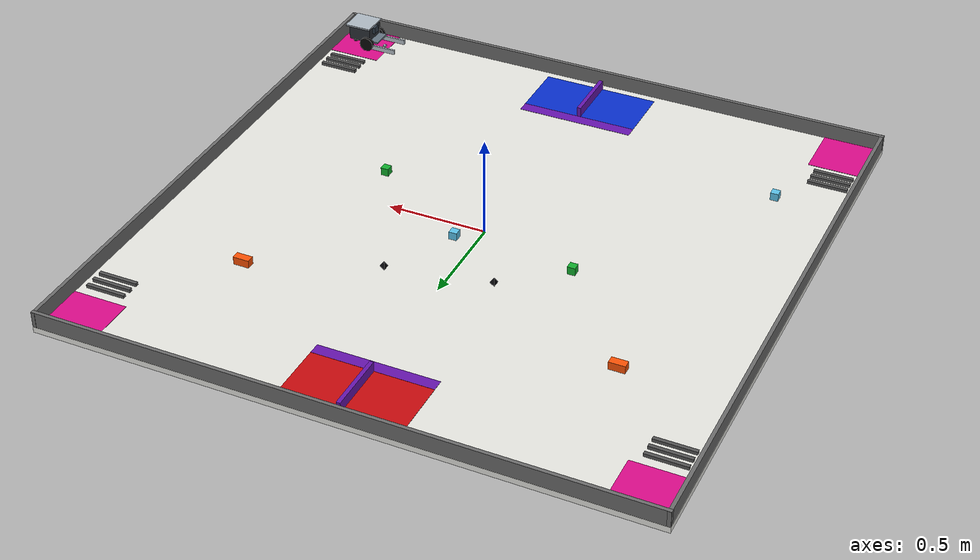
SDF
<?xml version='1.0' encoding='utf-8'?>
<sdf version="1.8">
  <world name="rescue_2027">
    <physics name="rescue_physics" type="ignored">
      <max_step_size>0.001</max_step_size>
      <real_time_factor>1.0</real_time_factor>
    </physics>
    <gravity>0 0 -9.81</gravity>
    <plugin filename="ignition-gazebo-physics-system" name="ignition::gazebo::systems::Physics" />
    <plugin filename="ignition-gazebo-user-commands-system" name="ignition::gazebo::systems::UserCommands" />
    <plugin filename="ignition-gazebo-scene-broadcaster-system" name="ignition::gazebo::systems::SceneBroadcaster">
      <state_hertz>15</state_hertz>
      <dynamic_pose_hertz>30</dynamic_pose_hertz>
    </plugin>
    <plugin filename="libignition-gazebo-contact-system.so" name="ignition::gazebo::systems::Contact" />
    <plugin filename="ignition-gazebo-sensors-system" name="ignition::gazebo::systems::Sensors">
      <render_engine>ogre</render_engine>
    </plugin>
    <plugin filename="ignition-gazebo-imu-system" name="ignition::gazebo::systems::Imu" />
    <light type="directional" name="sun">
      <pose>0 0 4 0 0 0</pose>
      <direction>-0.3 -0.4 -1</direction>
      <diffuse>0.9 0.9 0.9 1</diffuse>
      <specular>0.2 0.2 0.2 1</specular>
    </light>
    <model name="floor">
      <static>true</static>
      <pose>0 0 -0.015 0 0 0</pose>
      <link name="body">
        <collision name="floor_collision">
          <geometry>
            <box>
              <size>3.0 3.0 0.03</size>
            </box>
          </geometry>
        </collision>
        <visual name="visual">
          <geometry>
            <box>
              <size>3.0 3.0 0.03</size>
            </box>
          </geometry>
          <material>
            <ambient>0.90 0.90 0.88 1</ambient>
            <diffuse>0.90 0.90 0.88 1</diffuse>
          </material>
        </visual>
      </link>
    </model>
    <model name="fence_north">
      <static>true</static>
      <pose>0 1.49 0.04 0 0 0</pose>
      <link name="body">
        <collision name="fence_north_collision">
          <geometry>
            <box>
              <size>3 0.018 0.08</size>
            </box>
          </geometry>
        </collision>
        <visual name="visual">
          <geometry>
            <box>
              <size>3 0.018 0.08</size>
            </box>
          </geometry>
          <material>
            <ambient>0.42 0.42 0.42 1</ambient>
            <diffuse>0.42 0.42 0.42 1</diffuse>
          </material>
        </visual>
      </link>
    </model>
    <model name="fence_south">
      <static>true</static>
      <pose>0 -1.49 0.04 0 0 0</pose>
      <link name="body">
        <collision name="fence_south_collision">
          <geometry>
            <box>
              <size>3 0.018 0.08</size>
            </box>
          </geometry>
        </collision>
        <visual name="visual">
          <geometry>
            <box>
              <size>3 0.018 0.08</size>
            </box>
          </geometry>
          <material>
            <ambient>0.42 0.42 0.42 1</ambient>
            <diffuse>0.42 0.42 0.42 1</diffuse>
          </material>
        </visual>
      </link>
    </model>
    <model name="fence_east">
      <static>true</static>
      <pose>1.49 0 0.04 0 0 0</pose>
      <link name="body">
        <collision name="fence_east_collision">
          <geometry>
            <box>
              <size>0.018 3 0.08</size>
            </box>
          </geometry>
        </collision>
        <visual name="visual">
          <geometry>
            <box>
              <size>0.018 3 0.08</size>
            </box>
          </geometry>
          <material>
            <ambient>0.42 0.42 0.42 1</ambient>
            <diffuse>0.42 0.42 0.42 1</diffuse>
          </material>
        </visual>
      </link>
    </model>
    <model name="fence_west">
      <static>true</static>
      <pose>-1.49 0 0.04 0 0 0</pose>
      <link name="body">
        <collision name="fence_west_collision">
          <geometry>
            <box>
              <size>0.018 3 0.08</size>
            </box>
          </geometry>
        </collision>
        <visual name="visual">
          <geometry>
            <box>
              <size>0.018 3 0.08</size>
            </box>
          </geometry>
          <material>
            <ambient>0.42 0.42 0.42 1</ambient>
            <diffuse>0.42 0.42 0.42 1</diffuse>
          </material>
        </visual>
      </link>
    </model>
    <model name="start_1">
      <static>true</static>
      <pose>-1.35 1.35 0.0008 0 0 0</pose>
      <link name="body">
        <visual name="visual">
          <geometry>
            <box>
              <size>0.29 0.29 0.0016</size>
            </box>
          </geometry>
          <material>
            <ambient>0.86 0.04 0.54 1</ambient>
            <diffuse>0.86 0.04 0.54 1</diffuse>
          </material>
        </visual>
      </link>
    </model>
    <model name="bump_1_0">
      <static>true</static>
      <pose>-1.35 1.1500000000000001 0.008 0 0 0</pose>
      <link name="body">
        <collision name="bump_1_0_collision">
          <geometry>
            <box>
              <size>0.2 0.018 0.016</size>
            </box>
          </geometry>
        </collision>
        <visual name="visual">
          <geometry>
            <box>
              <size>0.2 0.018 0.016</size>
            </box>
          </geometry>
          <material>
            <ambient>0.33 0.33 0.33 1</ambient>
            <diffuse>0.33 0.33 0.33 1</diffuse>
          </material>
        </visual>
      </link>
    </model>
    <model name="bump_1_1">
      <static>true</static>
      <pose>-1.35 1.1 0.008 0 0 0</pose>
      <link name="body">
        <collision name="bump_1_1_collision">
          <geometry>
            <box>
              <size>0.2 0.018 0.016</size>
            </box>
          </geometry>
        </collision>
        <visual name="visual">
          <geometry>
            <box>
              <size>0.2 0.018 0.016</size>
            </box>
          </geometry>
          <material>
            <ambient>0.33 0.33 0.33 1</ambient>
            <diffuse>0.33 0.33 0.33 1</diffuse>
          </material>
        </visual>
      </link>
    </model>
    <model name="bump_1_2">
      <static>true</static>
      <pose>-1.35 1.05 0.008 0 0 0</pose>
      <link name="body">
        <collision name="bump_1_2_collision">
          <geometry>
            <box>
              <size>0.2 0.018 0.016</size>
            </box>
          </geometry>
        </collision>
        <visual name="visual">
          <geometry>
            <box>
              <size>0.2 0.018 0.016</size>
            </box>
          </geometry>
          <material>
            <ambient>0.33 0.33 0.33 1</ambient>
            <diffuse>0.33 0.33 0.33 1</diffuse>
          </material>
        </visual>
      </link>
    </model>
    <model name="start_2">
      <static>true</static>
      <pose>1.35 1.35 0.0008 0 0 0</pose>
      <link name="body">
        <visual name="visual">
          <geometry>
            <box>
              <size>0.29 0.29 0.0016</size>
            </box>
          </geometry>
          <material>
            <ambient>0.86 0.04 0.54 1</ambient>
            <diffuse>0.86 0.04 0.54 1</diffuse>
          </material>
        </visual>
      </link>
    </model>
    <model name="bump_2_0">
      <static>true</static>
      <pose>1.35 1.1500000000000001 0.008 0 0 0</pose>
      <link name="body">
        <collision name="bump_2_0_collision">
          <geometry>
            <box>
              <size>0.2 0.018 0.016</size>
            </box>
          </geometry>
        </collision>
        <visual name="visual">
          <geometry>
            <box>
              <size>0.2 0.018 0.016</size>
            </box>
          </geometry>
          <material>
            <ambient>0.33 0.33 0.33 1</ambient>
            <diffuse>0.33 0.33 0.33 1</diffuse>
          </material>
        </visual>
      </link>
    </model>
    <model name="bump_2_1">
      <static>true</static>
      <pose>1.35 1.1 0.008 0 0 0</pose>
      <link name="body">
        <collision name="bump_2_1_collision">
          <geometry>
            <box>
              <size>0.2 0.018 0.016</size>
            </box>
          </geometry>
        </collision>
        <visual name="visual">
          <geometry>
            <box>
              <size>0.2 0.018 0.016</size>
            </box>
          </geometry>
          <material>
            <ambient>0.33 0.33 0.33 1</ambient>
            <diffuse>0.33 0.33 0.33 1</diffuse>
          </material>
        </visual>
      </link>
    </model>
    <model name="bump_2_2">
      <static>true</static>
      <pose>1.35 1.05 0.008 0 0 0</pose>
      <link name="body">
        <collision name="bump_2_2_collision">
          <geometry>
            <box>
              <size>0.2 0.018 0.016</size>
            </box>
          </geometry>
        </collision>
        <visual name="visual">
          <geometry>
            <box>
              <size>0.2 0.018 0.016</size>
            </box>
          </geometry>
          <material>
            <ambient>0.33 0.33 0.33 1</ambient>
            <diffuse>0.33 0.33 0.33 1</diffuse>
          </material>
        </visual>
      </link>
    </model>
    <model name="start_3">
      <static>true</static>
      <pose>-1.35 -1.35 0.0008 0 0 0</pose>
      <link name="body">
        <visual name="visual">
          <geometry>
            <box>
              <size>0.29 0.29 0.0016</size>
            </box>
          </geometry>
          <material>
            <ambient>0.86 0.04 0.54 1</ambient>
            <diffuse>0.86 0.04 0.54 1</diffuse>
          </material>
        </visual>
      </link>
    </model>
    <model name="bump_3_0">
      <static>true</static>
      <pose>-1.35 -1.1500000000000001 0.008 0 0 0</pose>
      <link name="body">
        <collision name="bump_3_0_collision">
          <geometry>
            <box>
              <size>0.2 0.018 0.016</size>
            </box>
          </geometry>
        </collision>
        <visual name="visual">
          <geometry>
            <box>
              <size>0.2 0.018 0.016</size>
            </box>
          </geometry>
          <material>
            <ambient>0.33 0.33 0.33 1</ambient>
            <diffuse>0.33 0.33 0.33 1</diffuse>
          </material>
        </visual>
      </link>
    </model>
    <model name="bump_3_1">
      <static>true</static>
      <pose>-1.35 -1.1 0.008 0 0 0</pose>
      <link name="body">
        <collision name="bump_3_1_collision">
          <geometry>
            <box>
              <size>0.2 0.018 0.016</size>
            </box>
          </geometry>
        </collision>
        <visual name="visual">
          <geometry>
            <box>
              <size>0.2 0.018 0.016</size>
            </box>
          </geometry>
          <material>
            <ambient>0.33 0.33 0.33 1</ambient>
            <diffuse>0.33 0.33 0.33 1</diffuse>
          </material>
        </visual>
      </link>
    </model>
    <model name="bump_3_2">
      <static>true</static>
      <pose>-1.35 -1.05 0.008 0 0 0</pose>
      <link name="body">
        <collision name="bump_3_2_collision">
          <geometry>
            <box>
              <size>0.2 0.018 0.016</size>
            </box>
          </geometry>
        </collision>
        <visual name="visual">
          <geometry>
            <box>
              <size>0.2 0.018 0.016</size>
            </box>
          </geometry>
          <material>
            <ambient>0.33 0.33 0.33 1</ambient>
            <diffuse>0.33 0.33 0.33 1</diffuse>
          </material>
        </visual>
      </link>
    </model>
    <model name="start_4">
      <static>true</static>
      <pose>1.35 -1.35 0.0008 0 0 0</pose>
      <link name="body">
        <visual name="visual">
          <geometry>
            <box>
              <size>0.29 0.29 0.0016</size>
            </box>
          </geometry>
          <material>
            <ambient>0.86 0.04 0.54 1</ambient>
            <diffuse>0.86 0.04 0.54 1</diffuse>
          </material>
        </visual>
      </link>
    </model>
    <model name="bump_4_0">
      <static>true</static>
      <pose>1.35 -1.1500000000000001 0.008 0 0 0</pose>
      <link name="body">
        <collision name="bump_4_0_collision">
          <geometry>
            <box>
              <size>0.2 0.018 0.016</size>
            </box>
          </geometry>
        </collision>
        <visual name="visual">
          <geometry>
            <box>
              <size>0.2 0.018 0.016</size>
            </box>
          </geometry>
          <material>
            <ambient>0.33 0.33 0.33 1</ambient>
            <diffuse>0.33 0.33 0.33 1</diffuse>
          </material>
        </visual>
      </link>
    </model>
    <model name="bump_4_1">
      <static>true</static>
      <pose>1.35 -1.1 0.008 0 0 0</pose>
      <link name="body">
        <collision name="bump_4_1_collision">
          <geometry>
            <box>
              <size>0.2 0.018 0.016</size>
            </box>
          </geometry>
        </collision>
        <visual name="visual">
          <geometry>
            <box>
              <size>0.2 0.018 0.016</size>
            </box>
          </geometry>
          <material>
            <ambient>0.33 0.33 0.33 1</ambient>
            <diffuse>0.33 0.33 0.33 1</diffuse>
          </material>
        </visual>
      </link>
    </model>
    <model name="bump_4_2">
      <static>true</static>
      <pose>1.35 -1.05 0.008 0 0 0</pose>
      <link name="body">
        <collision name="bump_4_2_collision">
          <geometry>
            <box>
              <size>0.2 0.018 0.016</size>
            </box>
          </geometry>
        </collision>
        <visual name="visual">
          <geometry>
            <box>
              <size>0.2 0.018 0.016</size>
            </box>
          </geometry>
          <material>
            <ambient>0.33 0.33 0.33 1</ambient>
            <diffuse>0.33 0.33 0.33 1</diffuse>
          </material>
        </visual>
      </link>
    </model>
    <model name="blue_material">
      <static>true</static>
      <pose>0.155 -1.29 0.0009 0 0 0</pose>
      <link name="body">
        <visual name="visual">
          <geometry>
            <box>
              <size>0.29 0.30000000000000004 0.0018</size>
            </box>
          </geometry>
          <material>
            <ambient>0.03 0.18 0.80 1</ambient>
            <diffuse>0.03 0.18 0.80 1</diffuse>
          </material>
        </visual>
      </link>
    </model>
    <model name="blue_casualty">
      <static>true</static>
      <pose>-0.155 -1.29 0.0009 0 0 0</pose>
      <link name="body">
        <visual name="visual">
          <geometry>
            <box>
              <size>0.29 0.30000000000000004 0.0018</size>
            </box>
          </geometry>
          <material>
            <ambient>0.03 0.18 0.80 1</ambient>
            <diffuse>0.03 0.18 0.80 1</diffuse>
          </material>
        </visual>
      </link>
    </model>
    <model name="red_material">
      <static>true</static>
      <pose>-0.155 1.29 0.0009 0 0 0</pose>
      <link name="body">
        <visual name="visual">
          <geometry>
            <box>
              <size>0.29 0.30000000000000004 0.0018</size>
            </box>
          </geometry>
          <material>
            <ambient>0.78 0.04 0.05 1</ambient>
            <diffuse>0.78 0.04 0.05 1</diffuse>
          </material>
        </visual>
      </link>
    </model>
    <model name="red_casualty">
      <static>true</static>
      <pose>0.155 1.29 0.0009 0 0 0</pose>
      <link name="body">
        <visual name="visual">
          <geometry>
            <box>
              <size>0.29 0.30000000000000004 0.0018</size>
            </box>
          </geometry>
          <material>
            <ambient>0.78 0.04 0.05 1</ambient>
            <diffuse>0.78 0.04 0.05 1</diffuse>
          </material>
        </visual>
      </link>
    </model>
    <model name="blue_divider">
      <static>true</static>
      <pose>0 -1.29 0.026 0 0 0</pose>
      <link name="body">
        <collision name="blue_divider_collision">
          <geometry>
            <box>
              <size>0.02 0.3 0.052</size>
            </box>
          </geometry>
        </collision>
        <visual name="visual">
          <geometry>
            <box>
              <size>0.02 0.3 0.052</size>
            </box>
          </geometry>
          <material>
            <ambient>0.40 0.08 0.68 1</ambient>
            <diffuse>0.40 0.08 0.68 1</diffuse>
          </material>
        </visual>
      </link>
    </model>
    <model name="blue_entry_ramp">
      <static>true</static>
      <pose>0 -1.1099999999999999 .001  -0.015 0 0</pose>
      <link name="body">
        <visual name="ramp_visual">
          <geometry>
            <box>
              <size>0.60 0.060 0.001</size>
            </box>
          </geometry>
          <material>
            <ambient>0.40 0.08 0.68 1</ambient>
            <diffuse>0.40 0.08 0.68 1</diffuse>
          </material>
        </visual>
      </link>
    </model>
    <model name="red_divider">
      <static>true</static>
      <pose>0 1.29 0.026 0 0 0</pose>
      <link name="body">
        <collision name="red_divider_collision">
          <geometry>
            <box>
              <size>0.02 0.3 0.052</size>
            </box>
          </geometry>
        </collision>
        <visual name="visual">
          <geometry>
            <box>
              <size>0.02 0.3 0.052</size>
            </box>
          </geometry>
          <material>
            <ambient>0.40 0.08 0.68 1</ambient>
            <diffuse>0.40 0.08 0.68 1</diffuse>
          </material>
        </visual>
      </link>
    </model>
    <model name="red_entry_ramp">
      <static>true</static>
      <pose>0 1.1099999999999999 .001  0.015 0 0</pose>
      <link name="body">
        <visual name="ramp_visual">
          <geometry>
            <box>
              <size>0.60 0.060 0.001</size>
            </box>
          </geometry>
          <material>
            <ambient>0.40 0.08 0.68 1</ambient>
            <diffuse>0.40 0.08 0.68 1</diffuse>
          </material>
        </visual>
      </link>
    </model>
    <model name="normal_1">
      <pose>0.65 -0.25 0.02 0 0 0.0</pose>
      <link name="body">
        <inertial>
          <mass>0.035</mass>
          <inertia>
            <ixx>0.00002</ixx>
            <iyy>0.00002</iyy>
            <izz>0.00002</izz>
            <ixy>0</ixy>
            <ixz>0</ixz>
            <iyz>0</iyz>
          </inertia>
        </inertial>
        <collision name="collision">
          <geometry>
            <box>
              <size>0.04 0.04 0.04</size>
            </box>
          </geometry>
          <surface>
            <friction>
              <ode>
                <mu>0.35</mu>
                <mu2>0.35</mu2>
              </ode>
            </friction>
          </surface>
        </collision>
        <visual name="visual">
          <geometry>
            <box>
              <size>0.04 0.04 0.04</size>
            </box>
          </geometry>
          <material>
            <ambient>0.07 0.68 0.18 1</ambient>
            <diffuse>0.07 0.68 0.18 1</diffuse>
          </material>
        </visual>
      </link>
    </model>
    <model name="normal_2">
      <pose>-0.5 0.12 0.02 0 0 0.0</pose>
      <link name="body">
        <inertial>
          <mass>0.035</mass>
          <inertia>
            <ixx>0.00002</ixx>
            <iyy>0.00002</iyy>
            <izz>0.00002</izz>
            <ixy>0</ixy>
            <ixz>0</ixz>
            <iyz>0</iyz>
          </inertia>
        </inertial>
        <collision name="collision">
          <geometry>
            <box>
              <size>0.04 0.04 0.04</size>
            </box>
          </geometry>
          <surface>
            <friction>
              <ode>
                <mu>0.35</mu>
                <mu2>0.35</mu2>
              </ode>
            </friction>
          </surface>
        </collision>
        <visual name="visual">
          <geometry>
            <box>
              <size>0.04 0.04 0.04</size>
            </box>
          </geometry>
          <material>
            <ambient>0.07 0.68 0.18 1</ambient>
            <diffuse>0.07 0.68 0.18 1</diffuse>
          </material>
        </visual>
      </link>
    </model>
    <model name="core_1">
      <pose>-0.21 0.35 0.001 0 0 0.0</pose>
      <link name="body">
        <inertial>
          <mass>0.025</mass>
          <inertia>
            <ixx>0.00002</ixx>
            <iyy>0.00002</iyy>
            <izz>0.00002</izz>
            <ixy>0</ixy>
            <ixz>0</ixz>
            <iyz>0</iyz>
          </inertia>
        </inertial>
        <collision name="collision">
          <geometry>
            <mesh>
              <uri>model://rescue_assets/tetra.obj</uri>
            </mesh>
          </geometry>
          <surface>
            <friction>
              <ode>
                <mu>0.35</mu>
                <mu2>0.35</mu2>
              </ode>
            </friction>
          </surface>
        </collision>
        <visual name="visual">
          <geometry>
            <mesh>
              <uri>model://rescue_assets/tetra.obj</uri>
            </mesh>
          </geometry>
          <material>
            <ambient>0.025 0.025 0.035 1</ambient>
            <diffuse>0.025 0.025 0.035 1</diffuse>
          </material>
        </visual>
      </link>
    </model>
    <model name="core_2">
      <pose>0.3 0.45 0.001 0 0 0.0</pose>
      <link name="body">
        <inertial>
          <mass>0.025</mass>
          <inertia>
            <ixx>0.00002</ixx>
            <iyy>0.00002</iyy>
            <izz>0.00002</izz>
            <ixy>0</ixy>
            <ixz>0</ixz>
            <iyz>0</iyz>
          </inertia>
        </inertial>
        <collision name="collision">
          <geometry>
            <mesh>
              <uri>model://rescue_assets/tetra.obj</uri>
            </mesh>
          </geometry>
          <surface>
            <friction>
              <ode>
                <mu>0.35</mu>
                <mu2>0.35</mu2>
              </ode>
            </friction>
          </surface>
        </collision>
        <visual name="visual">
          <geometry>
            <mesh>
              <uri>model://rescue_assets/tetra.obj</uri>
            </mesh>
          </geometry>
          <material>
            <ambient>0.025 0.025 0.035 1</ambient>
            <diffuse>0.025 0.025 0.035 1</diffuse>
          </material>
        </visual>
      </link>
    </model>
    <model name="casualty_1">
      <pose>-0.95 0.68 0.02 0 0 0.0</pose>
      <link name="body">
        <inertial>
          <mass>0.055</mass>
          <inertia>
            <ixx>0.00002</ixx>
            <iyy>0.00002</iyy>
            <izz>0.00002</izz>
            <ixy>0</ixy>
            <ixz>0</ixz>
            <iyz>0</iyz>
          </inertia>
        </inertial>
        <collision name="collision">
          <geometry>
            <box>
              <size>0.08 0.04 0.04</size>
            </box>
          </geometry>
          <surface>
            <friction>
              <ode>
                <mu>0.35</mu>
                <mu2>0.35</mu2>
              </ode>
            </friction>
          </surface>
        </collision>
        <visual name="visual">
          <geometry>
            <box>
              <size>0.08 0.04 0.04</size>
            </box>
          </geometry>
          <material>
            <ambient>0.98 0.32 0.02 1</ambient>
            <diffuse>0.98 0.32 0.02 1</diffuse>
          </material>
        </visual>
      </link>
    </model>
    <model name="casualty_2">
      <pose>0.9 0.7 0.02 0 0 0.0</pose>
      <link name="body">
        <inertial>
          <mass>0.055</mass>
          <inertia>
            <ixx>0.00002</ixx>
            <iyy>0.00002</iyy>
            <izz>0.00002</izz>
            <ixy>0</ixy>
            <ixz>0</ixz>
            <iyz>0</iyz>
          </inertia>
        </inertial>
        <collision name="collision">
          <geometry>
            <box>
              <size>0.08 0.04 0.04</size>
            </box>
          </geometry>
          <surface>
            <friction>
              <ode>
                <mu>0.35</mu>
                <mu2>0.35</mu2>
              </ode>
            </friction>
          </surface>
        </collision>
        <visual name="visual">
          <geometry>
            <box>
              <size>0.08 0.04 0.04</size>
            </box>
          </geometry>
          <material>
            <ambient>0.98 0.32 0.02 1</ambient>
            <diffuse>0.98 0.32 0.02 1</diffuse>
          </material>
        </visual>
      </link>
    </model>
    <model name="hazard_1">
      <pose>0.11 0.1 0.02 0 0 0.0</pose>
      <link name="body">
        <inertial>
          <mass>0.035</mass>
          <inertia>
            <ixx>0.00002</ixx>
            <iyy>0.00002</iyy>
            <izz>0.00002</izz>
            <ixy>0</ixy>
            <ixz>0</ixz>
            <iyz>0</iyz>
          </inertia>
        </inertial>
        <collision name="collision">
          <geometry>
            <box>
              <size>0.04 0.04 0.04</size>
            </box>
          </geometry>
          <surface>
            <friction>
              <ode>
                <mu>0.35</mu>
                <mu2>0.35</mu2>
              </ode>
            </friction>
          </surface>
        </collision>
        <visual name="visual">
          <geometry>
            <box>
              <size>0.04 0.04 0.04</size>
            </box>
          </geometry>
          <material>
            <ambient>0.35 0.76 0.91 1</ambient>
            <diffuse>0.35 0.76 0.91 1</diffuse>
          </material>
        </visual>
      </link>
    </model>
    <model name="hazard_2">
      <pose>-1.15 -0.85 0.02 0 0 0.0</pose>
      <link name="body">
        <inertial>
          <mass>0.035</mass>
          <inertia>
            <ixx>0.00002</ixx>
            <iyy>0.00002</iyy>
            <izz>0.00002</izz>
            <ixy>0</ixy>
            <ixz>0</ixz>
            <iyz>0</iyz>
          </inertia>
        </inertial>
        <collision name="collision">
          <geometry>
            <box>
              <size>0.04 0.04 0.04</size>
            </box>
          </geometry>
          <surface>
            <friction>
              <ode>
                <mu>0.35</mu>
                <mu2>0.35</mu2>
              </ode>
            </friction>
          </surface>
        </collision>
        <visual name="visual">
          <geometry>
            <box>
              <size>0.04 0.04 0.04</size>
            </box>
          </geometry>
          <material>
            <ambient>0.35 0.76 0.91 1</ambient>
            <diffuse>0.35 0.76 0.91 1</diffuse>
          </material>
        </visual>
      </link>
    </model>
    <model name="rescue_bot">
      <pose>1.35 -1.35 0 0 0 3.14159265</pose>
      <link name="base_link">
        <pose>0 0 0.085 0 0 0</pose>
        <inertial>
          <mass>0.65</mass>
          <inertia>
            <ixx>0.002</ixx>
            <iyy>0.002</iyy>
            <izz>0.003</izz>
            <ixy>0</ixy>
            <ixz>0</ixz>
            <iyz>0</iyz>
          </inertia>
        </inertial>
        <collision name="base_collision">
          <geometry>
            <box>
              <size>0.12 0.12 0.075</size>
            </box>
          </geometry>
        </collision>
        <visual name="body">
          <geometry>
            <box>
              <size>0.12 0.12 0.075</size>
            </box>
          </geometry>
          <material>
            <ambient>0.17 0.19 0.22 1</ambient>
            <diffuse>0.17 0.19 0.22 1</diffuse>
          </material>
        </visual>
        <visual name="top_deck">
          <pose>-0.005 0 0.043 0 0 0</pose>
          <geometry>
            <box>
              <size>0.14 0.14 0.008</size>
            </box>
          </geometry>
          <material>
            <ambient>0.68 0.72 0.76 1</ambient>
            <diffuse>0.68 0.72 0.76 1</diffuse>
          </material>
        </visual>
        <visual name="gripper_mount">
          <pose>0.082 0 -0.037 0 0 0</pose>
          <geometry>
            <box>
              <size>0.045 0.105 0.009</size>
            </box>
          </geometry>
          <material>
            <ambient>0.40 0.46 0.51 1</ambient>
            <diffuse>0.40 0.46 0.51 1</diffuse>
          </material>
        </visual>
        <visual name="servo_body">
          <pose>0.052 0 0.015 0 0 0</pose>
          <geometry>
            <box>
              <size>0.041 0.042 0.035</size>
            </box>
          </geometry>
          <material>
            <ambient>0.18 0.23 0.28 1</ambient>
            <diffuse>0.18 0.23 0.28 1</diffuse>
          </material>
        </visual>
        <collision name="front_bumper">
          <pose>0.035 0 -0.06 0 0 0</pose>
          <geometry>
            <box>
              <size>0.010 0.115 0.025</size>
            </box>
          </geometry>
        </collision>
        <collision name="channel_rear_stop">
          <pose>0.120 0 -0.075 0 0 0</pose>
          <geometry>
            <box>
              <size>0.012 0.016 0.012</size>
            </box>
          </geometry>
        </collision>
        <visual name="channel_rear_stop_visual">
          <pose>0.120 0 -0.075 0 0 0</pose>
          <geometry>
            <box>
              <size>0.012 0.016 0.012</size>
            </box>
          </geometry>
          <material>
            <ambient>0.72 0.76 0.79 1</ambient>
            <diffuse>0.72 0.76 0.79 1</diffuse>
          </material>
        </visual>
        <collision name="rear_caster">
          <pose>-0.055 0 -0.069 0 0 0</pose>
          <geometry>
            <sphere>
              <radius>0.016</radius>
            </sphere>
          </geometry>
          <surface>
            <friction>
              <ode>
                <mu>0.02</mu>
                <mu2>0.02</mu2>
              </ode>
            </friction>
          </surface>
        </collision>
        <visual name="caster_visual">
          <pose>-0.055 0 -0.069 0 0 0</pose>
          <geometry>
            <sphere>
              <radius>0.016</radius>
            </sphere>
          </geometry>
          <material>
            <ambient>0.08 0.08 0.08 1</ambient>
            <diffuse>0.08 0.08 0.08 1</diffuse>
          </material>
        </visual>
        <sensor name="bumper_contact" type="contact">
          <always_on>true</always_on>
          <update_rate>50</update_rate>
          <topic>/fork/contact_front</topic>
          <contact>
            <collision>front_bumper</collision>
          </contact>
        </sensor>
        <sensor name="body_imu" type="imu">
          <topic>/imu</topic>
          <always_on>true</always_on>
          <update_rate>50</update_rate>
        </sensor>
        <sensor name="front_camera" type="camera">
          <pose>0.078 0 0.055 0 0.35 0</pose>
          <topic>/camera/image</topic>
          <always_on>true</always_on>
          <update_rate>8</update_rate>
          <camera>
            <horizontal_fov>1.45</horizontal_fov>
            <image>
              <width>640</width>
              <height>480</height>
              <format>R8G8B8</format>
            </image>
            <clip>
              <near>0.03</near>
              <far>4.0</far>
            </clip>
          </camera>
        </sensor>
        <sensor name="gripper_camera" type="camera">
          <pose>0.055 0 0.080 0 1.05 0</pose>
          <topic>/camera/gripper/image</topic>
          <always_on>true</always_on>
          <update_rate>8</update_rate>
          <camera>
            <horizontal_fov>1.45</horizontal_fov>
            <image>
              <width>640</width>
              <height>480</height>
              <format>R8G8B8</format>
            </image>
            <clip>
              <near>0.03</near>
              <far>2.0</far>
            </clip>
          </camera>
        </sensor>
      </link>
      <link name="left_wheel">
        <pose>0.045 0.065 0.038 -1.5707963 0 0</pose>
        <inertial>
          <mass>0.10</mass>
          <inertia>
            <ixx>0.00009</ixx>
            <iyy>0.00009</iyy>
            <izz>0.00009</izz>
            <ixy>0</ixy>
            <ixz>0</ixz>
            <iyz>0</iyz>
          </inertia>
        </inertial>
        <collision name="wheel_collision">
          <geometry>
            <cylinder>
              <radius>0.038</radius>
              <length>0.019</length>
            </cylinder>
          </geometry>
          <surface>
            <friction>
              <ode>
                <mu>3.0</mu>
                <mu2>3.0</mu2>
              </ode>
            </friction>
          </surface>
        </collision>
        <visual name="wheel_visual">
          <geometry>
            <cylinder>
              <radius>0.038</radius>
              <length>0.019</length>
            </cylinder>
          </geometry>
          <material>
            <ambient>0.04 0.04 0.04 1</ambient>
            <diffuse>0.04 0.04 0.04 1</diffuse>
          </material>
        </visual>
      </link>
      <joint name="left_wheel_joint" type="revolute">
        <parent>base_link</parent>
        <child>left_wheel</child>
        <axis>
          <xyz>0 0 1</xyz>
        </axis>
      </joint>
      <link name="right_wheel">
        <pose>0.045 -0.065 0.038 -1.5707963 0 0</pose>
        <inertial>
          <mass>0.10</mass>
          <inertia>
            <ixx>0.00009</ixx>
            <iyy>0.00009</iyy>
            <izz>0.00009</izz>
            <ixy>0</ixy>
            <ixz>0</ixz>
            <iyz>0</iyz>
          </inertia>
        </inertial>
        <collision name="wheel_collision">
          <geometry>
            <cylinder>
              <radius>0.038</radius>
              <length>0.019</length>
            </cylinder>
          </geometry>
          <surface>
            <friction>
              <ode>
                <mu>3.0</mu>
                <mu2>3.0</mu2>
              </ode>
            </friction>
          </surface>
        </collision>
        <visual name="wheel_visual">
          <geometry>
            <cylinder>
              <radius>0.038</radius>
              <length>0.019</length>
            </cylinder>
          </geometry>
          <material>
            <ambient>0.04 0.04 0.04 1</ambient>
            <diffuse>0.04 0.04 0.04 1</diffuse>
          </material>
        </visual>
      </link>
      <joint name="right_wheel_joint" type="revolute">
        <parent>base_link</parent>
        <child>right_wheel</child>
        <axis>
          <xyz>0 0 1</xyz>
        </axis>
      </joint>
      <link name="left_fork">
        <pose>0.135 0.06 0.023 0 0 0</pose>
        <inertial>
          <mass>0.045</mass>
          <inertia>
            <ixx>0.00001</ixx>
            <iyy>0.0001</iyy>
            <izz>0.0001</izz>
            <ixy>0</ixy>
            <ixz>0</ixz>
            <iyz>0</iyz>
          </inertia>
        </inertial>
        <collision name="left_fork_collision">
          <geometry>
            <box>
              <size>0.15 0.010 0.025</size>
            </box>
          </geometry>
          <surface>
            <friction>
              <ode>
                <mu>1.5</mu>
                <mu2>1.5</mu2>
              </ode>
            </friction>
          </surface>
        </collision>
        <visual name="fork_visual">
          <geometry>
            <box>
              <size>0.15 0.010 0.025</size>
            </box>
          </geometry>
          <material>
            <ambient>0.72 0.76 0.79 1</ambient>
            <diffuse>0.72 0.76 0.79 1</diffuse>
          </material>
        </visual>
        <sensor name="left_contact" type="contact">
          <always_on>true</always_on>
          <update_rate>50</update_rate>
          <topic>/fork/contact_left</topic>
          <contact>
            <collision>left_fork_collision</collision>
          </contact>
        </sensor>
      </link>
      <joint name="left_fork_joint" type="prismatic">
        <parent>base_link</parent>
        <child>left_fork</child>
        <axis>
          <xyz>0 1 0</xyz>
          <limit>
            <lower>-0.046</lower>
            <upper>0</upper>
            <effort>25</effort>
            <velocity>0.04</velocity>
          </limit>
        </axis>
      </joint>
      <plugin filename="ignition-gazebo-joint-position-controller-system" name="ignition::gazebo::systems::JointPositionController">
        <joint_name>left_fork_joint</joint_name>
        <topic>/fork/left/cmd</topic>
        <p_gain>20.0</p_gain>
      </plugin>
      <link name="right_fork">
        <pose>0.135 -0.06 0.023 0 0 0</pose>
        <inertial>
          <mass>0.045</mass>
          <inertia>
            <ixx>0.00001</ixx>
            <iyy>0.0001</iyy>
            <izz>0.0001</izz>
            <ixy>0</ixy>
            <ixz>0</ixz>
            <iyz>0</iyz>
          </inertia>
        </inertial>
        <collision name="right_fork_collision">
          <geometry>
            <box>
              <size>0.15 0.010 0.025</size>
            </box>
          </geometry>
          <surface>
            <friction>
              <ode>
                <mu>1.5</mu>
                <mu2>1.5</mu2>
              </ode>
            </friction>
          </surface>
        </collision>
        <visual name="fork_visual">
          <geometry>
            <box>
              <size>0.15 0.010 0.025</size>
            </box>
          </geometry>
          <material>
            <ambient>0.72 0.76 0.79 1</ambient>
            <diffuse>0.72 0.76 0.79 1</diffuse>
          </material>
        </visual>
        <sensor name="right_contact" type="contact">
          <always_on>true</always_on>
          <update_rate>50</update_rate>
          <topic>/fork/contact_right</topic>
          <contact>
            <collision>right_fork_collision</collision>
          </contact>
        </sensor>
      </link>
      <joint name="right_fork_joint" type="prismatic">
        <parent>base_link</parent>
        <child>right_fork</child>
        <axis>
          <xyz>0 -1 0</xyz>
          <limit>
            <lower>-0.046</lower>
            <upper>0</upper>
            <effort>25</effort>
            <velocity>0.04</velocity>
          </limit>
        </axis>
      </joint>
      <plugin filename="ignition-gazebo-joint-position-controller-system" name="ignition::gazebo::systems::JointPositionController">
        <joint_name>right_fork_joint</joint_name>
        <topic>/fork/right/cmd</topic>
        <p_gain>20.0</p_gain>
      </plugin>
      <plugin filename="ignition-gazebo-joint-state-publisher-system" name="ignition::gazebo::systems::JointStatePublisher">
        <topic>/fork/joint_states</topic>
        <joint_name>left_fork_joint</joint_name>
        <joint_name>right_fork_joint</joint_name>
      </plugin>
      <plugin filename="ignition-gazebo-diff-drive-system" name="ignition::gazebo::systems::DiffDrive">
        <left_joint>left_wheel_joint</left_joint>
        <right_joint>right_wheel_joint</right_joint>
        <wheel_separation>0.13</wheel_separation>
        <wheel_radius>0.038</wheel_radius>
        <topic>/cmd_vel</topic>
        <odom_topic>/odom</odom_topic>
        <odom_publish_frequency>30</odom_publish_frequency>
      </plugin>
    </model>
  </world>
</sdf>
